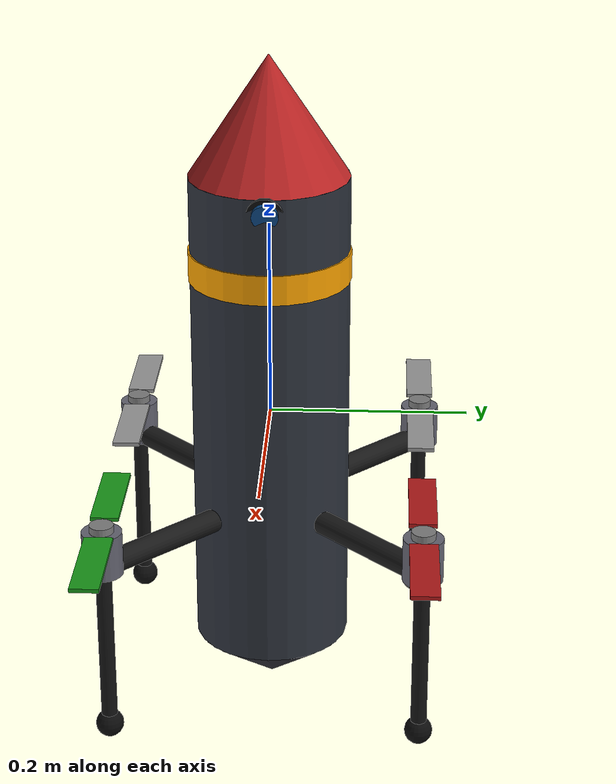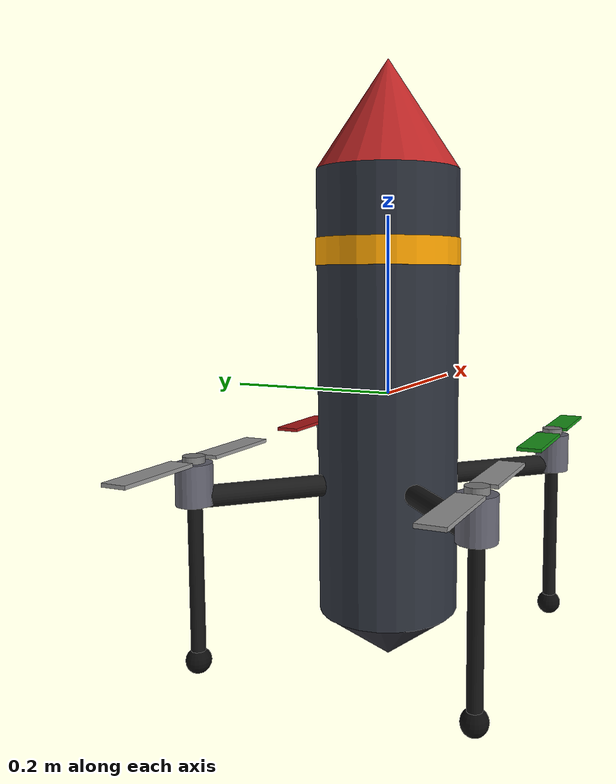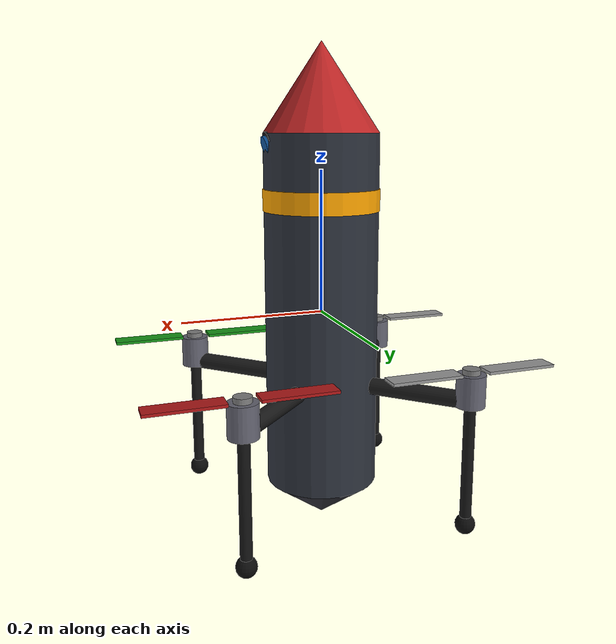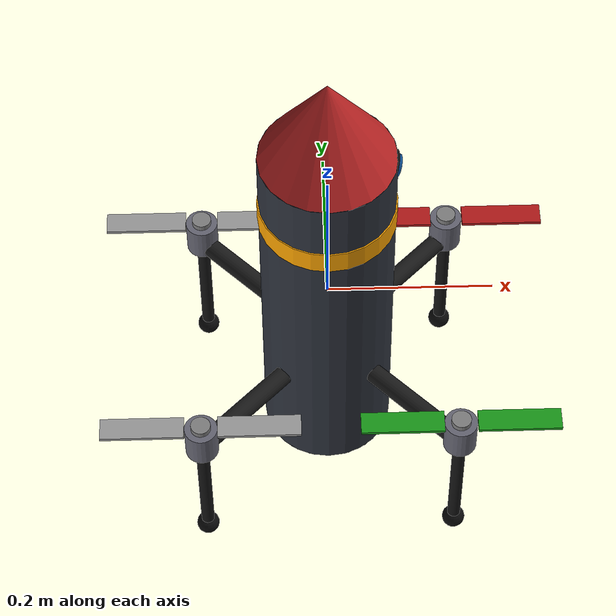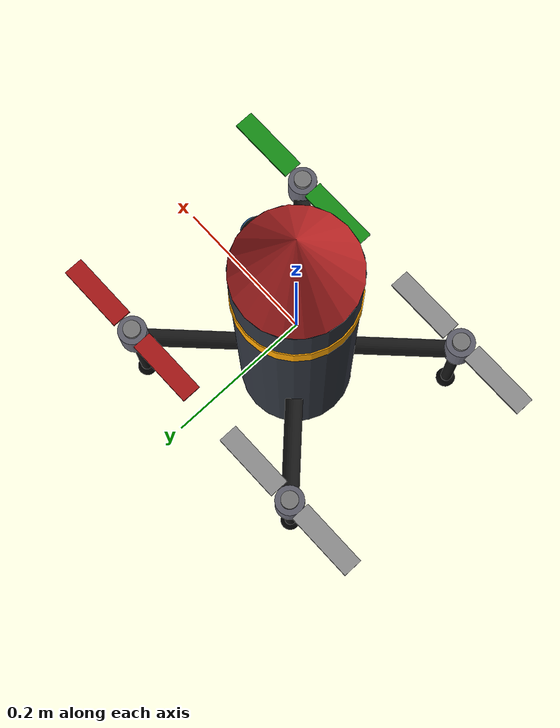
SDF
<?xml version="1.0" ?>
<sdf version="1.9">
  <model name="bullet_interceptor">

    <!-- =================================================================
         FUSELAGE + ARMS + LEGS  (single rigid body)
         ================================================================= -->
    <link name="base_link">
      <pose>0 0 0 0 0 0</pose>

      <inertial>
        <!-- 1.8 kg solid cylinder, r = 0.08, h = 0.50, centred on the origin.
             Ixx = Iyy = (1/12) m (3r^2 + h^2) = 0.040380
             Izz       = (1/2)  m r^2          = 0.005760           -->
        <mass>1.8</mass>
        <pose>0 0 0 0 0 0</pose>
        <inertia>
          <ixx>0.040380</ixx>
          <ixy>0</ixy>
          <ixz>0</ixz>
          <iyy>0.040380</iyy>
          <iyz>0</iyz>
          <izz>0.005760</izz>
        </inertia>
      </inertial>

      <!-- ========== fuselage ========== -->
      <collision name="fuselage_collision">
        <pose>0 0 0 0 0 0</pose>
        <geometry>
          <cylinder>
            <radius>0.08</radius>
            <length>0.50</length>
          </cylinder>
        </geometry>
        <surface>
          <friction>
            <ode>
              <mu>0.9</mu>
              <mu2>0.9</mu2>
            </ode>
          </friction>
          <contact>
            <ode>
              <kp>1e6</kp>
              <kd>100</kd>
              <max_vel>0.1</max_vel>
              <min_depth>0.001</min_depth>
            </ode>
          </contact>
        </surface>
      </collision>

      <visual name="fuselage_visual">
        <pose>0 0 0 0 0 0</pose>
        <geometry>
          <cylinder>
            <radius>0.08</radius>
            <length>0.50</length>
          </cylinder>
        </geometry>
        <material>
          <ambient>0.12 0.13 0.16 1</ambient>
          <diffuse>0.18 0.20 0.24 1</diffuse>
          <specular>0.55 0.55 0.60 1</specular>
        </material>
      </visual>

      <!-- ========== ogive nose cone (aerodynamic tip) ========== -->
      <visual name="nose_cone_visual">
        <pose>0 0 0.31 0 0 0</pose>
        <geometry>
          <cone>
            <radius>0.08</radius>
            <length>0.12</length>
          </cone>
        </geometry>
        <material>
          <ambient>0.45 0.10 0.10 1</ambient>
          <diffuse>0.75 0.15 0.15 1</diffuse>
          <specular>0.6 0.6 0.6 1</specular>
        </material>
      </visual>

      <!-- ========== boat tail (rear taper) ========== -->
      <visual name="tail_cone_visual">
        <pose>0 0 -0.28 3.14159265 0 0</pose>
        <geometry>
          <cone>
            <radius>0.08</radius>
            <length>0.06</length>
          </cone>
        </geometry>
        <material>
          <ambient>0.10 0.10 0.12 1</ambient>
          <diffuse>0.15 0.15 0.18 1</diffuse>
        </material>
      </visual>

      <!-- ========== identification band ========== -->
      <visual name="band_visual">
        <pose>0 0 0.16 0 0 0</pose>
        <geometry>
          <cylinder>
            <radius>0.0815</radius>
            <length>0.03</length>
          </cylinder>
        </geometry>
        <material>
          <ambient>0.70 0.45 0.00 1</ambient>
          <diffuse>1.00 0.65 0.00 1</diffuse>
        </material>
      </visual>

      <!-- =========== ARM 0 : FRONT RIGHT (-45 deg) =========== -->
      <visual name="arm_0_visual">
        <pose>0.098995 -0.098995 -0.10 0 1.5707963 -0.7853982</pose>
        <geometry>
          <cylinder>
            <radius>0.012</radius>
            <length>0.16</length>
          </cylinder>
        </geometry>
        <material>
          <ambient>0.05 0.05 0.05 1</ambient>
          <diffuse>0.10 0.10 0.10 1</diffuse>
        </material>
      </visual>
      <collision name="arm_0_collision">
        <pose>0.098995 -0.098995 -0.10 0 1.5707963 -0.7853982</pose>
        <geometry>
          <cylinder>
            <radius>0.012</radius>
            <length>0.16</length>
          </cylinder>
        </geometry>
      </collision>
      <visual name="motor_pod_0_visual">
        <pose>0.155563 -0.155563 -0.085 0 0 0</pose>
        <geometry>
          <cylinder>
            <radius>0.020</radius>
            <length>0.045</length>
          </cylinder>
        </geometry>
        <material>
          <ambient>0.25 0.25 0.28 1</ambient>
          <diffuse>0.40 0.40 0.45 1</diffuse>
        </material>
      </visual>
      <visual name="leg_0_visual">
        <pose>0.155563 -0.155563 -0.19 0 0 0</pose>
        <geometry>
          <cylinder>
            <radius>0.008</radius>
            <length>0.18</length>
          </cylinder>
        </geometry>
        <material>
          <ambient>0.05 0.05 0.05 1</ambient>
          <diffuse>0.08 0.08 0.08 1</diffuse>
        </material>
      </visual>
      <collision name="foot_0_collision">
        <pose>0.155563 -0.155563 -0.28 0 0 0</pose>
        <geometry>
          <sphere>
            <radius>0.014</radius>
          </sphere>
        </geometry>
        <surface>
          <friction>
            <ode>
              <mu>1.2</mu>
              <mu2>1.2</mu2>
            </ode>
          </friction>
          <contact>
            <ode>
              <kp>1e6</kp>
              <kd>100</kd>
              <max_vel>0.1</max_vel>
              <min_depth>0.001</min_depth>
            </ode>
          </contact>
        </surface>
      </collision>
      <visual name="foot_0_visual">
        <pose>0.155563 -0.155563 -0.28 0 0 0</pose>
        <geometry>
          <sphere>
            <radius>0.014</radius>
          </sphere>
        </geometry>
        <material>
          <ambient>0.02 0.02 0.02 1</ambient>
          <diffuse>0.05 0.05 0.05 1</diffuse>
        </material>
      </visual>

      <!-- =========== ARM 1 : REAR LEFT (+135 deg) =========== -->
      <visual name="arm_1_visual">
        <pose>-0.098995 0.098995 -0.10 0 1.5707963 2.3561945</pose>
        <geometry>
          <cylinder>
            <radius>0.012</radius>
            <length>0.16</length>
          </cylinder>
        </geometry>
        <material>
          <ambient>0.05 0.05 0.05 1</ambient>
          <diffuse>0.10 0.10 0.10 1</diffuse>
        </material>
      </visual>
      <collision name="arm_1_collision">
        <pose>-0.098995 0.098995 -0.10 0 1.5707963 2.3561945</pose>
        <geometry>
          <cylinder>
            <radius>0.012</radius>
            <length>0.16</length>
          </cylinder>
        </geometry>
      </collision>
      <visual name="motor_pod_1_visual">
        <pose>-0.155563 0.155563 -0.085 0 0 0</pose>
        <geometry>
          <cylinder>
            <radius>0.020</radius>
            <length>0.045</length>
          </cylinder>
        </geometry>
        <material>
          <ambient>0.25 0.25 0.28 1</ambient>
          <diffuse>0.40 0.40 0.45 1</diffuse>
        </material>
      </visual>
      <visual name="leg_1_visual">
        <pose>-0.155563 0.155563 -0.19 0 0 0</pose>
        <geometry>
          <cylinder>
            <radius>0.008</radius>
            <length>0.18</length>
          </cylinder>
        </geometry>
        <material>
          <ambient>0.05 0.05 0.05 1</ambient>
          <diffuse>0.08 0.08 0.08 1</diffuse>
        </material>
      </visual>
      <collision name="foot_1_collision">
        <pose>-0.155563 0.155563 -0.28 0 0 0</pose>
        <geometry>
          <sphere>
            <radius>0.014</radius>
          </sphere>
        </geometry>
        <surface>
          <friction>
            <ode>
              <mu>1.2</mu>
              <mu2>1.2</mu2>
            </ode>
          </friction>
          <contact>
            <ode>
              <kp>1e6</kp>
              <kd>100</kd>
              <max_vel>0.1</max_vel>
              <min_depth>0.001</min_depth>
            </ode>
          </contact>
        </surface>
      </collision>
      <visual name="foot_1_visual">
        <pose>-0.155563 0.155563 -0.28 0 0 0</pose>
        <geometry>
          <sphere>
            <radius>0.014</radius>
          </sphere>
        </geometry>
        <material>
          <ambient>0.02 0.02 0.02 1</ambient>
          <diffuse>0.05 0.05 0.05 1</diffuse>
        </material>
      </visual>

      <!-- =========== ARM 2 : FRONT LEFT (+45 deg) =========== -->
      <visual name="arm_2_visual">
        <pose>0.098995 0.098995 -0.10 0 1.5707963 0.7853982</pose>
        <geometry>
          <cylinder>
            <radius>0.012</radius>
            <length>0.16</length>
          </cylinder>
        </geometry>
        <material>
          <ambient>0.05 0.05 0.05 1</ambient>
          <diffuse>0.10 0.10 0.10 1</diffuse>
        </material>
      </visual>
      <collision name="arm_2_collision">
        <pose>0.098995 0.098995 -0.10 0 1.5707963 0.7853982</pose>
        <geometry>
          <cylinder>
            <radius>0.012</radius>
            <length>0.16</length>
          </cylinder>
        </geometry>
      </collision>
      <visual name="motor_pod_2_visual">
        <pose>0.155563 0.155563 -0.085 0 0 0</pose>
        <geometry>
          <cylinder>
            <radius>0.020</radius>
            <length>0.045</length>
          </cylinder>
        </geometry>
        <material>
          <ambient>0.25 0.25 0.28 1</ambient>
          <diffuse>0.40 0.40 0.45 1</diffuse>
        </material>
      </visual>
      <visual name="leg_2_visual">
        <pose>0.155563 0.155563 -0.19 0 0 0</pose>
        <geometry>
          <cylinder>
            <radius>0.008</radius>
            <length>0.18</length>
          </cylinder>
        </geometry>
        <material>
          <ambient>0.05 0.05 0.05 1</ambient>
          <diffuse>0.08 0.08 0.08 1</diffuse>
        </material>
      </visual>
      <collision name="foot_2_collision">
        <pose>0.155563 0.155563 -0.28 0 0 0</pose>
        <geometry>
          <sphere>
            <radius>0.014</radius>
          </sphere>
        </geometry>
        <surface>
          <friction>
            <ode>
              <mu>1.2</mu>
              <mu2>1.2</mu2>
            </ode>
          </friction>
          <contact>
            <ode>
              <kp>1e6</kp>
              <kd>100</kd>
              <max_vel>0.1</max_vel>
              <min_depth>0.001</min_depth>
            </ode>
          </contact>
        </surface>
      </collision>
      <visual name="foot_2_visual">
        <pose>0.155563 0.155563 -0.28 0 0 0</pose>
        <geometry>
          <sphere>
            <radius>0.014</radius>
          </sphere>
        </geometry>
        <material>
          <ambient>0.02 0.02 0.02 1</ambient>
          <diffuse>0.05 0.05 0.05 1</diffuse>
        </material>
      </visual>

      <!-- =========== ARM 3 : REAR RIGHT (-135 deg) =========== -->
      <visual name="arm_3_visual">
        <pose>-0.098995 -0.098995 -0.10 0 1.5707963 -2.3561945</pose>
        <geometry>
          <cylinder>
            <radius>0.012</radius>
            <length>0.16</length>
          </cylinder>
        </geometry>
        <material>
          <ambient>0.05 0.05 0.05 1</ambient>
          <diffuse>0.10 0.10 0.10 1</diffuse>
        </material>
      </visual>
      <collision name="arm_3_collision">
        <pose>-0.098995 -0.098995 -0.10 0 1.5707963 -2.3561945</pose>
        <geometry>
          <cylinder>
            <radius>0.012</radius>
            <length>0.16</length>
          </cylinder>
        </geometry>
      </collision>
      <visual name="motor_pod_3_visual">
        <pose>-0.155563 -0.155563 -0.085 0 0 0</pose>
        <geometry>
          <cylinder>
            <radius>0.020</radius>
            <length>0.045</length>
          </cylinder>
        </geometry>
        <material>
          <ambient>0.25 0.25 0.28 1</ambient>
          <diffuse>0.40 0.40 0.45 1</diffuse>
        </material>
      </visual>
      <visual name="leg_3_visual">
        <pose>-0.155563 -0.155563 -0.19 0 0 0</pose>
        <geometry>
          <cylinder>
            <radius>0.008</radius>
            <length>0.18</length>
          </cylinder>
        </geometry>
        <material>
          <ambient>0.05 0.05 0.05 1</ambient>
          <diffuse>0.08 0.08 0.08 1</diffuse>
        </material>
      </visual>
      <collision name="foot_3_collision">
        <pose>-0.155563 -0.155563 -0.28 0 0 0</pose>
        <geometry>
          <sphere>
            <radius>0.014</radius>
          </sphere>
        </geometry>
        <surface>
          <friction>
            <ode>
              <mu>1.2</mu>
              <mu2>1.2</mu2>
            </ode>
          </friction>
          <contact>
            <ode>
              <kp>1e6</kp>
              <kd>100</kd>
              <max_vel>0.1</max_vel>
              <min_depth>0.001</min_depth>
            </ode>
          </contact>
        </surface>
      </collision>
      <visual name="foot_3_visual">
        <pose>-0.155563 -0.155563 -0.28 0 0 0</pose>
        <geometry>
          <sphere>
            <radius>0.014</radius>
          </sphere>
        </geometry>
        <material>
          <ambient>0.02 0.02 0.02 1</ambient>
          <diffuse>0.05 0.05 0.05 1</diffuse>
        </material>
      </visual>
    </link>

    <!-- =================================================================
         IMU
         ================================================================= -->
    <link name="imu_link">
      <pose>0 0 0 0 0 0</pose>
      <inertial>
        <mass>0.010</mass>
        <inertia>
          <ixx>1.0e-06</ixx>
          <ixy>0</ixy>
          <ixz>0</ixz>
          <iyy>1.0e-06</iyy>
          <iyz>0</iyz>
          <izz>1.0e-06</izz>
        </inertia>
      </inertial>

      <sensor name="imu_sensor" type="imu">
        <gz_frame_id>imu_link</gz_frame_id>
        <pose>0 0 0 3.14159265 0 0</pose>
        <always_on>1</always_on>
        <update_rate>1000</update_rate>
        <imu>
          <angular_velocity>
            <x>
              <noise type="gaussian">
                <mean>0</mean>
                <stddev>0.0003394</stddev>
                <bias_mean>0.0000075</bias_mean>
                <bias_stddev>0.0000008</bias_stddev>
              </noise>
            </x>
            <y>
              <noise type="gaussian">
                <mean>0</mean>
                <stddev>0.0003394</stddev>
                <bias_mean>0.0000075</bias_mean>
                <bias_stddev>0.0000008</bias_stddev>
              </noise>
            </y>
            <z>
              <noise type="gaussian">
                <mean>0</mean>
                <stddev>0.0003394</stddev>
                <bias_mean>0.0000075</bias_mean>
                <bias_stddev>0.0000008</bias_stddev>
              </noise>
            </z>
          </angular_velocity>
          <linear_acceleration>
            <x>
              <noise type="gaussian">
                <mean>0</mean>
                <stddev>0.004</stddev>
                <bias_mean>0.1</bias_mean>
                <bias_stddev>0.001</bias_stddev>
              </noise>
            </x>
            <y>
              <noise type="gaussian">
                <mean>0</mean>
                <stddev>0.004</stddev>
                <bias_mean>0.1</bias_mean>
                <bias_stddev>0.001</bias_stddev>
              </noise>
            </y>
            <z>
              <noise type="gaussian">
                <mean>0</mean>
                <stddev>0.004</stddev>
                <bias_mean>0.1</bias_mean>
                <bias_stddev>0.001</bias_stddev>
              </noise>
            </z>
          </linear_acceleration>
        </imu>
      </sensor>
    </link>

    <joint name="imu_joint" type="fixed">
      <parent>base_link</parent>
      <child>imu_link</child>
    </joint>

    <link name="camera_link">
      <pose>0.055 0 0.24 0 0.2617994 0</pose>
      <inertial>
        <mass>0.030</mass>
        <inertia>
          <ixx>1.0e-05</ixx>
          <ixy>0</ixy>
          <ixz>0</ixz>
          <iyy>1.0e-05</iyy>
          <iyz>0</iyz>
          <izz>1.0e-05</izz>
        </inertia>
      </inertial>

      <visual name="camera_housing_visual">
        <pose>0 0 0 0 1.5707963 0</pose>
        <geometry>
          <cylinder>
            <radius>0.018</radius>
            <length>0.045</length>
          </cylinder>
        </geometry>
        <material>
          <ambient>0.02 0.02 0.02 1</ambient>
          <diffuse>0.05 0.05 0.05 1</diffuse>
          <specular>0.2 0.2 0.2 1</specular>
        </material>
      </visual>
      <visual name="camera_lens_visual">
        <pose>0.024 0 0 0 1.5707963 0</pose>
        <geometry>
          <cylinder>
            <radius>0.013</radius>
            <length>0.006</length>
          </cylinder>
        </geometry>
        <material>
          <ambient>0.00 0.10 0.20 1</ambient>
          <diffuse>0.05 0.30 0.55 1</diffuse>
          <specular>0.9 0.9 0.9 1</specular>
        </material>
      </visual>

      <sensor name="target_lock_camera" type="camera">
        <pose>0 0 0 0 0 0</pose>
        <always_on>1</always_on>
        <update_rate>60</update_rate>
        <visualize>1</visualize>
        <topic>bullet_interceptor/nose_camera/image</topic>
        <camera name="nose_cam">
          <horizontal_fov>1.221730</horizontal_fov>
          <image>
            <width>1280</width>
            <height>720</height>
            <format>R8G8B8</format>
          </image>
          <clip>
            <near>0.05</near>
            <far>3000</far>
          </clip>
          <noise>
            <type>gaussian</type>
            <mean>0.0</mean>
            <stddev>0.005</stddev>
          </noise>
          <lens>
            <intrinsics>
              <fx>929.0</fx>
              <fy>929.0</fy>
              <cx>640.0</cx>
              <cy>360.0</cy>
              <s>0.0</s>
            </intrinsics>
          </lens>
          <optical_frame_id>camera_optical_frame</optical_frame_id>
        </camera>
      </sensor>
    </link>

    <joint name="camera_joint" type="fixed">
      <parent>base_link</parent>
      <child>camera_link</child>
    </joint>

    <link name="rotor_0">
      <pose>0.155563 -0.155563 -0.06 0 0 0</pose>
      <inertial>
        <mass>0.025</mass>
        <inertia>
          <ixx>6.0e-05</ixx>
          <ixy>0</ixy>
          <ixz>0</ixz>
          <iyy>6.0e-05</iyy>
          <iyz>0</iyz>
          <izz>1.2e-04</izz>
        </inertia>
      </inertial>
      <visual name="rotor_0_hub">
        <geometry>
          <cylinder>
            <radius>0.012</radius>
            <length>0.010</length>
          </cylinder>
        </geometry>
        <material>
          <ambient>0.30 0.30 0.30 1</ambient>
          <diffuse>0.50 0.50 0.50 1</diffuse>
        </material>
      </visual>
      <visual name="rotor_0_blade_1">
        <pose>0.070 0 0 0 0 0</pose>
        <geometry>
          <box>
            <size>0.10 0.028 0.004</size>
          </box>
        </geometry>
        <material>
          <ambient>0.05 0.30 0.05 1</ambient>
          <diffuse>0.10 0.60 0.10 1</diffuse>
        </material>
      </visual>
      <visual name="rotor_0_blade_2">
        <pose>-0.070 0 0 0 0 0</pose>
        <geometry>
          <box>
            <size>0.10 0.028 0.004</size>
          </box>
        </geometry>
        <material>
          <ambient>0.05 0.30 0.05 1</ambient>
          <diffuse>0.10 0.60 0.10 1</diffuse>
        </material>
      </visual>
      <collision name="rotor_0_collision">
        <geometry>
          <cylinder>
            <radius>0.120</radius>
            <length>0.005</length>
          </cylinder>
        </geometry>
        <surface>
          <contact>
            <ode/>
          </contact>
          <friction>
            <ode/>
          </friction>
        </surface>
      </collision>
    </link>

    <joint name="rotor_0_joint" type="revolute">
      <parent>base_link</parent>
      <child>rotor_0</child>
      <axis>
        <xyz>0 0 1</xyz>
        <limit>
          <lower>-1e16</lower>
          <upper>1e16</upper>
        </limit>
        <dynamics>
          <damping>0.004</damping>
        </dynamics>
      </axis>
    </joint>

    <link name="rotor_1">
      <pose>-0.155563 0.155563 -0.06 0 0 0</pose>
      <inertial>
        <mass>0.025</mass>
        <inertia>
          <ixx>6.0e-05</ixx>
          <ixy>0</ixy>
          <ixz>0</ixz>
          <iyy>6.0e-05</iyy>
          <iyz>0</iyz>
          <izz>1.2e-04</izz>
        </inertia>
      </inertial>
      <visual name="rotor_1_hub">
        <geometry>
          <cylinder>
            <radius>0.012</radius>
            <length>0.010</length>
          </cylinder>
        </geometry>
        <material>
          <ambient>0.30 0.30 0.30 1</ambient>
          <diffuse>0.50 0.50 0.50 1</diffuse>
        </material>
      </visual>
      <visual name="rotor_1_blade_1">
        <pose>0.070 0 0 0 0 0</pose>
        <geometry>
          <box>
            <size>0.10 0.028 0.004</size>
          </box>
        </geometry>
        <material>
          <ambient>0.30 0.30 0.30 1</ambient>
          <diffuse>0.60 0.60 0.60 1</diffuse>
        </material>
      </visual>
      <visual name="rotor_1_blade_2">
        <pose>-0.070 0 0 0 0 0</pose>
        <geometry>
          <box>
            <size>0.10 0.028 0.004</size>
          </box>
        </geometry>
        <material>
          <ambient>0.30 0.30 0.30 1</ambient>
          <diffuse>0.60 0.60 0.60 1</diffuse>
        </material>
      </visual>
      <collision name="rotor_1_collision">
        <geometry>
          <cylinder>
            <radius>0.120</radius>
            <length>0.005</length>
          </cylinder>
        </geometry>
        <surface>
          <contact>
            <ode/>
          </contact>
          <friction>
            <ode/>
          </friction>
        </surface>
      </collision>
    </link>

    <joint name="rotor_1_joint" type="revolute">
      <parent>base_link</parent>
      <child>rotor_1</child>
      <axis>
        <xyz>0 0 1</xyz>
        <limit>
          <lower>-1e16</lower>
          <upper>1e16</upper>
        </limit>
        <dynamics>
          <damping>0.004</damping>
        </dynamics>
      </axis>
    </joint>

    <link name="rotor_2">
      <pose>0.155563 0.155563 -0.06 0 0 0</pose>
      <inertial>
        <mass>0.025</mass>
        <inertia>
          <ixx>6.0e-05</ixx>
          <ixy>0</ixy>
          <ixz>0</ixz>
          <iyy>6.0e-05</iyy>
          <iyz>0</iyz>
          <izz>1.2e-04</izz>
        </inertia>
      </inertial>
      <visual name="rotor_2_hub">
        <geometry>
          <cylinder>
            <radius>0.012</radius>
            <length>0.010</length>
          </cylinder>
        </geometry>
        <material>
          <ambient>0.30 0.30 0.30 1</ambient>
          <diffuse>0.50 0.50 0.50 1</diffuse>
        </material>
      </visual>
      <visual name="rotor_2_blade_1">
        <pose>0.070 0 0 0 0 0</pose>
        <geometry>
          <box>
            <size>0.10 0.028 0.004</size>
          </box>
        </geometry>
        <material>
          <ambient>0.30 0.05 0.05 1</ambient>
          <diffuse>0.70 0.10 0.10 1</diffuse>
        </material>
      </visual>
      <visual name="rotor_2_blade_2">
        <pose>-0.070 0 0 0 0 0</pose>
        <geometry>
          <box>
            <size>0.10 0.028 0.004</size>
          </box>
        </geometry>
        <material>
          <ambient>0.30 0.05 0.05 1</ambient>
          <diffuse>0.70 0.10 0.10 1</diffuse>
        </material>
      </visual>
      <collision name="rotor_2_collision">
        <geometry>
          <cylinder>
            <radius>0.120</radius>
            <length>0.005</length>
          </cylinder>
        </geometry>
        <surface>
          <contact>
            <ode/>
          </contact>
          <friction>
            <ode/>
          </friction>
        </surface>
      </collision>
    </link>

    <joint name="rotor_2_joint" type="revolute">
      <parent>base_link</parent>
      <child>rotor_2</child>
      <axis>
        <xyz>0 0 1</xyz>
        <limit>
          <lower>-1e16</lower>
          <upper>1e16</upper>
        </limit>
        <dynamics>
          <damping>0.004</damping>
        </dynamics>
      </axis>
    </joint>

    <link name="rotor_3">
      <pose>-0.155563 -0.155563 -0.06 0 0 0</pose>
      <inertial>
        <mass>0.025</mass>
        <inertia>
          <ixx>6.0e-05</ixx>
          <ixy>0</ixy>
          <ixz>0</ixz>
          <iyy>6.0e-05</iyy>
          <iyz>0</iyz>
          <izz>1.2e-04</izz>
        </inertia>
      </inertial>
      <visual name="rotor_3_hub">
        <geometry>
          <cylinder>
            <radius>0.012</radius>
            <length>0.010</length>
          </cylinder>
        </geometry>
        <material>
          <ambient>0.30 0.30 0.30 1</ambient>
          <diffuse>0.50 0.50 0.50 1</diffuse>
        </material>
      </visual>
      <visual name="rotor_3_blade_1">
        <pose>0.070 0 0 0 0 0</pose>
        <geometry>
          <box>
            <size>0.10 0.028 0.004</size>
          </box>
        </geometry>
        <material>
          <ambient>0.30 0.30 0.30 1</ambient>
          <diffuse>0.60 0.60 0.60 1</diffuse>
        </material>
      </visual>
      <visual name="rotor_3_blade_2">
        <pose>-0.070 0 0 0 0 0</pose>
        <geometry>
          <box>
            <size>0.10 0.028 0.004</size>
          </box>
        </geometry>
        <material>
          <ambient>0.30 0.30 0.30 1</ambient>
          <diffuse>0.60 0.60 0.60 1</diffuse>
        </material>
      </visual>
      <collision name="rotor_3_collision">
        <geometry>
          <cylinder>
            <radius>0.120</radius>
            <length>0.005</length>
          </cylinder>
        </geometry>
        <surface>
          <contact>
            <ode/>
          </contact>
          <friction>
            <ode/>
          </friction>
        </surface>
      </collision>
    </link>

    <joint name="rotor_3_joint" type="revolute">
      <parent>base_link</parent>
      <child>rotor_3</child>
      <axis>
        <xyz>0 0 1</xyz>
        <limit>
          <lower>-1e16</lower>
          <upper>1e16</upper>
        </limit>
        <dynamics>
          <damping>0.004</damping>
        </dynamics>
      </axis>
    </joint>

    <!-- =================================================================
         PLUGINS
         ================================================================= -->

    <plugin filename="gz-sim-joint-state-publisher-system"
            name="gz::sim::systems::JointStatePublisher">
    </plugin>

    <!-- rotor_0 : CCW -->
    <plugin filename="gz-sim-lift-drag-system"
            name="gz::sim::systems::LiftDrag">
      <a0>0.20</a0>
      <alpha_stall>1.4</alpha_stall>
      <cla>4.2500</cla>
      <cda>0.10</cda>
      <cma>0.0</cma>
      <cla_stall>-0.025</cla_stall>
      <cda_stall>0.0</cda_stall>
      <cma_stall>0.0</cma_stall>
      <area>0.0025</area>
      <air_density>1.2041</air_density>
      <cp>0.084 0 0</cp>
      <forward>0 1 0</forward>
      <upward>0 0 1</upward>
      <link_name>rotor_0</link_name>
    </plugin>
    <plugin filename="gz-sim-lift-drag-system"
            name="gz::sim::systems::LiftDrag">
      <a0>0.20</a0>
      <alpha_stall>1.4</alpha_stall>
      <cla>4.2500</cla>
      <cda>0.10</cda>
      <cma>0.0</cma>
      <cla_stall>-0.025</cla_stall>
      <cda_stall>0.0</cda_stall>
      <cma_stall>0.0</cma_stall>
      <area>0.0025</area>
      <air_density>1.2041</air_density>
      <cp>-0.084 0 0</cp>
      <forward>0 -1 0</forward>
      <upward>0 0 1</upward>
      <link_name>rotor_0</link_name>
    </plugin>

    <!-- rotor_1 : CCW -->
    <plugin filename="gz-sim-lift-drag-system"
            name="gz::sim::systems::LiftDrag">
      <a0>0.20</a0>
      <alpha_stall>1.4</alpha_stall>
      <cla>4.2500</cla>
      <cda>0.10</cda>
      <cma>0.0</cma>
      <cla_stall>-0.025</cla_stall>
      <cda_stall>0.0</cda_stall>
      <cma_stall>0.0</cma_stall>
      <area>0.0025</area>
      <air_density>1.2041</air_density>
      <cp>0.084 0 0</cp>
      <forward>0 1 0</forward>
      <upward>0 0 1</upward>
      <link_name>rotor_1</link_name>
    </plugin>
    <plugin filename="gz-sim-lift-drag-system"
            name="gz::sim::systems::LiftDrag">
      <a0>0.20</a0>
      <alpha_stall>1.4</alpha_stall>
      <cla>4.2500</cla>
      <cda>0.10</cda>
      <cma>0.0</cma>
      <cla_stall>-0.025</cla_stall>
      <cda_stall>0.0</cda_stall>
      <cma_stall>0.0</cma_stall>
      <area>0.0025</area>
      <air_density>1.2041</air_density>
      <cp>-0.084 0 0</cp>
      <forward>0 -1 0</forward>
      <upward>0 0 1</upward>
      <link_name>rotor_1</link_name>
    </plugin>

    <!-- rotor_2 : CW (mirrored forward) -->
    <plugin filename="gz-sim-lift-drag-system"
            name="gz::sim::systems::LiftDrag">
      <a0>0.20</a0>
      <alpha_stall>1.4</alpha_stall>
      <cla>4.2500</cla>
      <cda>0.10</cda>
      <cma>0.0</cma>
      <cla_stall>-0.025</cla_stall>
      <cda_stall>0.0</cda_stall>
      <cma_stall>0.0</cma_stall>
      <area>0.0025</area>
      <air_density>1.2041</air_density>
      <cp>0.084 0 0</cp>
      <forward>0 -1 0</forward>
      <upward>0 0 1</upward>
      <link_name>rotor_2</link_name>
    </plugin>
    <plugin filename="gz-sim-lift-drag-system"
            name="gz::sim::systems::LiftDrag">
      <a0>0.20</a0>
      <alpha_stall>1.4</alpha_stall>
      <cla>4.2500</cla>
      <cda>0.10</cda>
      <cma>0.0</cma>
      <cla_stall>-0.025</cla_stall>
      <cda_stall>0.0</cda_stall>
      <cma_stall>0.0</cma_stall>
      <area>0.0025</area>
      <air_density>1.2041</air_density>
      <cp>-0.084 0 0</cp>
      <forward>0 1 0</forward>
      <upward>0 0 1</upward>
      <link_name>rotor_2</link_name>
    </plugin>

    <!-- rotor_3 : CW (mirrored forward) -->
    <plugin filename="gz-sim-lift-drag-system"
            name="gz::sim::systems::LiftDrag">
      <a0>0.20</a0>
      <alpha_stall>1.4</alpha_stall>
      <cla>4.2500</cla>
      <cda>0.10</cda>
      <cma>0.0</cma>
      <cla_stall>-0.025</cla_stall>
      <cda_stall>0.0</cda_stall>
      <cma_stall>0.0</cma_stall>
      <area>0.0025</area>
      <air_density>1.2041</air_density>
      <cp>0.084 0 0</cp>
      <forward>0 -1 0</forward>
      <upward>0 0 1</upward>
      <link_name>rotor_3</link_name>
    </plugin>
    <plugin filename="gz-sim-lift-drag-system"
            name="gz::sim::systems::LiftDrag">
      <a0>0.20</a0>
      <alpha_stall>1.4</alpha_stall>
      <cla>4.2500</cla>
      <cda>0.10</cda>
      <cma>0.0</cma>
      <cla_stall>-0.025</cla_stall>
      <cda_stall>0.0</cda_stall>
      <cma_stall>0.0</cma_stall>
      <area>0.0025</area>
      <air_density>1.2041</air_density>
      <cp>-0.084 0 0</cp>
      <forward>0 1 0</forward>
      <upward>0 0 1</upward>
      <link_name>rotor_3</link_name>
    </plugin>

    <!-- Required so the ArduPilot plugin can drive the rotor joints -->
    <plugin filename="gz-sim-apply-joint-force-system"
            name="gz::sim::systems::ApplyJointForce">
      <joint_name>rotor_0_joint</joint_name>
    </plugin>
    <plugin filename="gz-sim-apply-joint-force-system"
            name="gz::sim::systems::ApplyJointForce">
      <joint_name>rotor_1_joint</joint_name>
    </plugin>
    <plugin filename="gz-sim-apply-joint-force-system"
            name="gz::sim::systems::ApplyJointForce">
      <joint_name>rotor_2_joint</joint_name>
    </plugin>
    <plugin filename="gz-sim-apply-joint-force-system"
            name="gz::sim::systems::ApplyJointForce">
      <joint_name>rotor_3_joint</joint_name>
    </plugin>

    <plugin name="ArduPilotPlugin" filename="ArduPilotPlugin">
      <!-- Port settings -->
      <fdm_addr>127.0.0.1</fdm_addr>
      <fdm_port_in>9002</fdm_port_in>
      <fdm_port_out>9003</fdm_port_out>
      <connectionTimeoutMaxCount>5</connectionTimeoutMaxCount>
      <lock_step>1</lock_step>
      <no_time_sync>1</no_time_sync>
      <have_32_channels>0</have_32_channels>

      <!-- Frame conventions: Gazebo ENU/FLU -> ArduPilot NED/FRD -->
      <modelXYZToAirplaneXForwardZDown degrees="true">0 0 0 180 0 0</modelXYZToAirplaneXForwardZDown>
      <gazeboXYZToNED degrees="true">0 0 0 180 0 90</gazeboXYZToNED>

      <!-- Sensors -->
      <!-- Scoped name is resolved relative to this model entity, so the
           model name itself must NOT be repeated here. -->
      <imuName>imu_link::imu_sensor</imuName>

      <!-- Motor 1 : front right, CCW -->
      <control channel="0">
        <jointName>rotor_0_joint</jointName>
        <useForce>1</useForce>
        <multiplier>1550</multiplier>
        <offset>0</offset>
        <servo_min>1100</servo_min>
        <servo_max>1900</servo_max>
        <type>VELOCITY</type>
        <p_gain>0.20</p_gain>
        <i_gain>0</i_gain>
        <d_gain>0</d_gain>
        <i_max>0</i_max>
        <i_min>0</i_min>
        <cmd_max>6.0</cmd_max>
        <cmd_min>-6.0</cmd_min>
        <controlVelocitySlowdownSim>1</controlVelocitySlowdownSim>
      </control>

      <!-- Motor 2 : rear left, CCW -->
      <control channel="1">
        <jointName>rotor_1_joint</jointName>
        <useForce>1</useForce>
        <multiplier>1550</multiplier>
        <offset>0</offset>
        <servo_min>1100</servo_min>
        <servo_max>1900</servo_max>
        <type>VELOCITY</type>
        <p_gain>0.20</p_gain>
        <i_gain>0</i_gain>
        <d_gain>0</d_gain>
        <i_max>0</i_max>
        <i_min>0</i_min>
        <cmd_max>6.0</cmd_max>
        <cmd_min>-6.0</cmd_min>
        <controlVelocitySlowdownSim>1</controlVelocitySlowdownSim>
      </control>

      <!-- Motor 3 : front left, CW -->
      <control channel="2">
        <jointName>rotor_2_joint</jointName>
        <useForce>1</useForce>
        <multiplier>-1550</multiplier>
        <offset>0</offset>
        <servo_min>1100</servo_min>
        <servo_max>1900</servo_max>
        <type>VELOCITY</type>
        <p_gain>0.20</p_gain>
        <i_gain>0</i_gain>
        <d_gain>0</d_gain>
        <i_max>0</i_max>
        <i_min>0</i_min>
        <cmd_max>6.0</cmd_max>
        <cmd_min>-6.0</cmd_min>
        <controlVelocitySlowdownSim>1</controlVelocitySlowdownSim>
      </control>

      <!-- Motor 4 : rear right, CW -->
      <control channel="3">
        <jointName>rotor_3_joint</jointName>
        <useForce>1</useForce>
        <multiplier>-1550</multiplier>
        <offset>0</offset>
        <servo_min>1100</servo_min>
        <servo_max>1900</servo_max>
        <type>VELOCITY</type>
        <p_gain>0.20</p_gain>
        <i_gain>0</i_gain>
        <d_gain>0</d_gain>
        <i_max>0</i_max>
        <i_min>0</i_min>
        <cmd_max>6.0</cmd_max>
        <cmd_min>-6.0</cmd_min>
        <controlVelocitySlowdownSim>1</controlVelocitySlowdownSim>
      </control>
    </plugin>

  </model>
</sdf>
